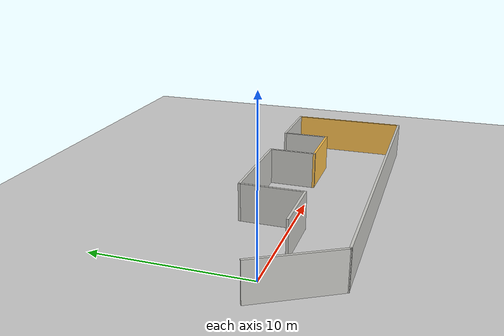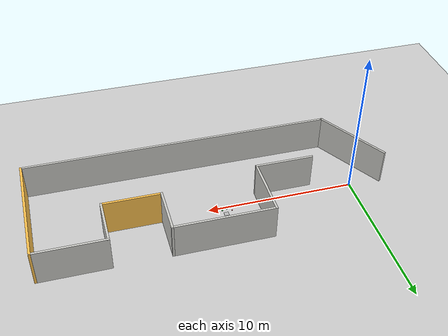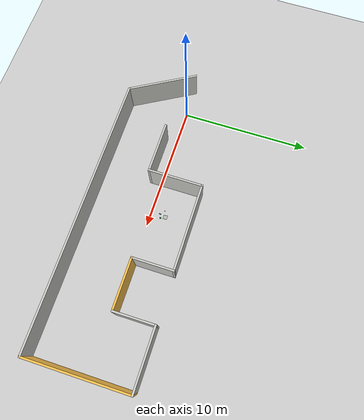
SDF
<sdf version="1.7">
 <world name="default">
  <light name="sun" type="directional">
   <pose>0 0 10 0 -0 0</pose>
   <diffuse>0.8 0.8 0.8 1</diffuse>
   <specular>0.2 0.2 0.2 1</specular>
   <attenuation>
    <range>1000</range>
    <constant>0.9</constant>
    <linear>0.01</linear>
    <quadratic>0.001</quadratic>
   </attenuation>
   <direction>-0.5 0.1 -0.9</direction>
   <spot><inner_angle>0</inner_angle><outer_angle>0</outer_angle><falloff>0</falloff></spot>
  </light>
  <model name="ground_plane">
   <static>1</static>
   <link name="link">
    <collision name="collision">
     <geometry><plane><normal>0 0 1</normal><size>100 100</size></plane></geometry>
     <surface><friction><ode><mu>100</mu><mu2>50</mu2></ode></friction></surface>
    </collision>
    <visual name="visual">
     <cast_shadows>0</cast_shadows>
     <geometry><plane><normal>0 0 1</normal><size>100 100</size></plane></geometry>
     <material>
      <script><uri>file://media/materials/scripts/gazebo.material</uri><name>Gazebo/Grey</name></script>
     </material>
    </visual>
   </link>
  </model>
  <gravity>0 0 -9.8</gravity>
  <magnetic_field>6e-06 2.3e-05 -4.2e-05</magnetic_field>
  <atmosphere type="adiabatic"/>
  <physics type="ode">
   <max_step_size>0.001</max_step_size>
   <real_time_factor>1</real_time_factor>
   <real_time_update_rate>1000</real_time_update_rate>
  </physics>
  <scene><ambient>0.4 0.4 0.4 1</ambient><background>0.7 0.7 0.7 1</background><shadows>1</shadows></scene>
  <spherical_coordinates>
   <surface_model>EARTH_WGS84</surface_model>
   <latitude_deg>0</latitude_deg>
   <longitude_deg>0</longitude_deg>
   <elevation>0</elevation>
   <heading_deg>0</heading_deg>
  </spherical_coordinates>
  <model name="well_0">
   <link name="Wall_37">
    <pose>7.30123 2.36581 0 0 -0 1.5708</pose>
    <visual name="Wall_37_Visual">
     <pose>0 0 1.25 0 -0 0</pose>
     <geometry><box><size>3.25 0.15 2.5</size></box></geometry>
     <material>
      <script><uri>file://media/materials/scripts/gazebo.material</uri><name>Gazebo/CeilingTiled</name></script>
      <ambient>1 0.764706 0.305882 1</ambient>
      <shader type="pixel"/>
     </material>
     <meta><layer>0</layer></meta>
    </visual>
    <collision name="Wall_37_Collision">
     <pose>0 0 1.25 0 -0 0</pose>
     <geometry><box><size>3.25 0.15 2.5</size></box></geometry>
     <surface>
      <friction>
       <ode><mu>1</mu><mu2>1</mu2><fdir1>0 0 0</fdir1><slip1>0</slip1><slip2>0</slip2></ode>
       <torsional>
        <coefficient>1</coefficient>
        <patch_radius>0</patch_radius>
        <surface_radius>0</surface_radius>
        <use_patch_radius>1</use_patch_radius>
        <ode><slip>0</slip></ode>
       </torsional>
      </friction>
      <bounce><restitution_coefficient>0</restitution_coefficient><threshold>1e+06</threshold></bounce>
      <contact>
       <collide_without_contact>0</collide_without_contact>
       <collide_without_contact_bitmask>1</collide_without_contact_bitmask>
       <collide_bitmask>1</collide_bitmask>
       <ode>
        <soft_cfm>0</soft_cfm>
        <soft_erp>0.2</soft_erp>
        <kp>1e+13</kp>
        <kd>1</kd>
        <max_vel>0.01</max_vel>
        <min_depth>0</min_depth>
       </ode>
       <bullet>
        <split_impulse>1</split_impulse>
        <split_impulse_penetration_threshold>-0.01</split_impulse_penetration_threshold>
        <soft_cfm>0</soft_cfm>
        <soft_erp>0.2</soft_erp>
        <kp>1e+13</kp>
        <kd>1</kd>
       </bullet>
      </contact>
     </surface>
    </collision>
   </link>
   <link name="Wall_38">
    <pose>9.60122 3.91581 0 0 -0 0</pose>
    <visual name="Wall_38_Visual">
     <pose>0 0 1.25 0 -0 0</pose>
     <geometry><box><size>4.75 0.15 2.5</size></box></geometry>
     <material>
      <script><uri>file://media/materials/scripts/gazebo.material</uri><name>Gazebo/CeilingTiled</name></script>
      <ambient>1 0.764706 0.305882 1</ambient>
      <shader type="pixel"/>
     </material>
     <meta><layer>0</layer></meta>
    </visual>
    <collision name="Wall_38_Collision">
     <pose>0 0 1.25 0 -0 0</pose>
     <geometry><box><size>4.75 0.15 2.5</size></box></geometry>
     <surface>
      <friction>
       <ode><mu>1</mu><mu2>1</mu2><fdir1>0 0 0</fdir1><slip1>0</slip1><slip2>0</slip2></ode>
       <torsional>
        <coefficient>1</coefficient>
        <patch_radius>0</patch_radius>
        <surface_radius>0</surface_radius>
        <use_patch_radius>1</use_patch_radius>
        <ode><slip>0</slip></ode>
       </torsional>
      </friction>
      <bounce><restitution_coefficient>0</restitution_coefficient><threshold>1e+06</threshold></bounce>
      <contact>
       <collide_without_contact>0</collide_without_contact>
       <collide_without_contact_bitmask>1</collide_without_contact_bitmask>
       <collide_bitmask>1</collide_bitmask>
       <ode>
        <soft_cfm>0</soft_cfm>
        <soft_erp>0.2</soft_erp>
        <kp>1e+13</kp>
        <kd>1</kd>
        <max_vel>0.01</max_vel>
        <min_depth>0</min_depth>
       </ode>
       <bullet>
        <split_impulse>1</split_impulse>
        <split_impulse_penetration_threshold>-0.01</split_impulse_penetration_threshold>
        <soft_cfm>0</soft_cfm>
        <soft_erp>0.2</soft_erp>
        <kp>1e+13</kp>
        <kd>1</kd>
       </bullet>
      </contact>
     </surface>
    </collision>
   </link>
   <link name="Wall_44">
    <pose>5.37623 0.815813 0 0 -0 3.14159</pose>
    <visual name="Wall_44_Visual">
     <pose>0 0 1.25 0 -0 0</pose>
     <geometry><box><size>4 0.15 2.5</size></box></geometry>
     <material>
      <script><uri>file://media/materials/scripts/gazebo.material</uri><name>Gazebo/Grey</name></script>
      <ambient>1 0.764706 0.305882 1</ambient>
      <shader type="pixel"/>
     </material>
     <meta><layer>0</layer></meta>
    </visual>
    <collision name="Wall_44_Collision">
     <pose>0 0 1.25 0 -0 0</pose>
     <geometry><box><size>4 0.15 2.5</size></box></geometry>
     <surface>
      <friction>
       <ode><mu>1</mu><mu2>1</mu2><fdir1>0 0 0</fdir1><slip1>0</slip1><slip2>0</slip2></ode>
       <torsional>
        <coefficient>1</coefficient>
        <patch_radius>0</patch_radius>
        <surface_radius>0</surface_radius>
        <use_patch_radius>1</use_patch_radius>
        <ode><slip>0</slip></ode>
       </torsional>
      </friction>
      <bounce><restitution_coefficient>0</restitution_coefficient><threshold>1e+06</threshold></bounce>
      <contact>
       <collide_without_contact>0</collide_without_contact>
       <collide_without_contact_bitmask>1</collide_without_contact_bitmask>
       <collide_bitmask>1</collide_bitmask>
       <ode>
        <soft_cfm>0</soft_cfm>
        <soft_erp>0.2</soft_erp>
        <kp>1e+13</kp>
        <kd>1</kd>
        <max_vel>0.01</max_vel>
        <min_depth>0</min_depth>
       </ode>
       <bullet>
        <split_impulse>1</split_impulse>
        <split_impulse_penetration_threshold>-0.01</split_impulse_penetration_threshold>
        <soft_cfm>0</soft_cfm>
        <soft_erp>0.2</soft_erp>
        <kp>1e+13</kp>
        <kd>1</kd>
       </bullet>
      </contact>
     </surface>
    </collision>
   </link>
   <link name="Wall_45">
    <pose>3.45123 2.36581 0 0 -0 1.5708</pose>
    <visual name="Wall_45_Visual">
     <pose>0 0 1.25 0 -0 0</pose>
     <geometry><box><size>3.25 0.15 2.5</size></box></geometry>
     <material>
      <script><uri>file://media/materials/scripts/gazebo.material</uri><name>Gazebo/CeilingTiled</name></script>
      <ambient>1 0.764706 0.305882 1</ambient>
      <shader type="pixel"/>
     </material>
     <meta><layer>0</layer></meta>
    </visual>
    <collision name="Wall_45_Collision">
     <pose>0 0 1.25 0 -0 0</pose>
     <geometry><box><size>3.25 0.15 2.5</size></box></geometry>
     <surface>
      <friction>
       <ode><mu>1</mu><mu2>1</mu2><fdir1>0 0 0</fdir1><slip1>0</slip1><slip2>0</slip2></ode>
       <torsional>
        <coefficient>1</coefficient>
        <patch_radius>0</patch_radius>
        <surface_radius>0</surface_radius>
        <use_patch_radius>1</use_patch_radius>
        <ode><slip>0</slip></ode>
       </torsional>
      </friction>
      <bounce><restitution_coefficient>0</restitution_coefficient><threshold>1e+06</threshold></bounce>
      <contact>
       <collide_without_contact>0</collide_without_contact>
       <collide_without_contact_bitmask>1</collide_without_contact_bitmask>
       <collide_bitmask>1</collide_bitmask>
       <ode>
        <soft_cfm>0</soft_cfm>
        <soft_erp>0.2</soft_erp>
        <kp>1e+13</kp>
        <kd>1</kd>
        <max_vel>0.01</max_vel>
        <min_depth>0</min_depth>
       </ode>
       <bullet>
        <split_impulse>1</split_impulse>
        <split_impulse_penetration_threshold>-0.01</split_impulse_penetration_threshold>
        <soft_cfm>0</soft_cfm>
        <soft_erp>0.2</soft_erp>
        <kp>1e+13</kp>
        <kd>1</kd>
       </bullet>
      </contact>
     </surface>
    </collision>
   </link>
   <link name="Wall_46">
    <pose>0.151226 3.91581 0 0 -0 3.14159</pose>
    <visual name="Wall_46_Visual">
     <pose>0 0 1.25 0 -0 0</pose>
     <geometry><box><size>6.75 0.15 2.5</size></box></geometry>
     <material>
      <script><uri>file://media/materials/scripts/gazebo.material</uri><name>Gazebo/CeilingTiled</name></script>
      <ambient>1 0.764706 0.305882 1</ambient>
      <shader type="pixel"/>
     </material>
     <meta><layer>0</layer></meta>
    </visual>
    <collision name="Wall_46_Collision">
     <pose>0 0 1.25 0 -0 0</pose>
     <geometry><box><size>6.75 0.15 2.5</size></box></geometry>
     <surface>
      <friction>
       <ode><mu>1</mu><mu2>1</mu2><fdir1>0 0 0</fdir1><slip1>0</slip1><slip2>0</slip2></ode>
       <torsional>
        <coefficient>1</coefficient>
        <patch_radius>0</patch_radius>
        <surface_radius>0</surface_radius>
        <use_patch_radius>1</use_patch_radius>
        <ode><slip>0</slip></ode>
       </torsional>
      </friction>
      <bounce><restitution_coefficient>0</restitution_coefficient><threshold>1e+06</threshold></bounce>
      <contact>
       <collide_without_contact>0</collide_without_contact>
       <collide_without_contact_bitmask>1</collide_without_contact_bitmask>
       <collide_bitmask>1</collide_bitmask>
       <ode>
        <soft_cfm>0</soft_cfm>
        <soft_erp>0.2</soft_erp>
        <kp>1e+13</kp>
        <kd>1</kd>
        <max_vel>0.01</max_vel>
        <min_depth>0</min_depth>
       </ode>
       <bullet>
        <split_impulse>1</split_impulse>
        <split_impulse_penetration_threshold>-0.01</split_impulse_penetration_threshold>
        <soft_cfm>0</soft_cfm>
        <soft_erp>0.2</soft_erp>
        <kp>1e+13</kp>
        <kd>1</kd>
       </bullet>
      </contact>
     </surface>
    </collision>
   </link>
   <link name="Wall_50">
    <pose>-3.14877 1.86581 0 0 0 -1.5708</pose>
    <visual name="Wall_50_Visual">
     <pose>0 0 1.25 0 -0 0</pose>
     <geometry><box><size>4.25 0.15 2.5</size></box></geometry>
     <material>
      <script><uri>file://media/materials/scripts/gazebo.material</uri><name>Gazebo/CeilingTiled</name></script>
      <ambient>1 0.764706 0.305882 1</ambient>
      <shader type="pixel"/>
     </material>
     <meta><layer>0</layer></meta>
    </visual>
    <collision name="Wall_50_Collision">
     <pose>0 0 1.25 0 -0 0</pose>
     <geometry><box><size>4.25 0.15 2.5</size></box></geometry>
     <surface>
      <friction>
       <ode><mu>1</mu><mu2>1</mu2><fdir1>0 0 0</fdir1><slip1>0</slip1><slip2>0</slip2></ode>
       <torsional>
        <coefficient>1</coefficient>
        <patch_radius>0</patch_radius>
        <surface_radius>0</surface_radius>
        <use_patch_radius>1</use_patch_radius>
        <ode><slip>0</slip></ode>
       </torsional>
      </friction>
      <bounce><restitution_coefficient>0</restitution_coefficient><threshold>1e+06</threshold></bounce>
      <contact>
       <collide_without_contact>0</collide_without_contact>
       <collide_without_contact_bitmask>1</collide_without_contact_bitmask>
       <collide_bitmask>1</collide_bitmask>
       <ode>
        <soft_cfm>0</soft_cfm>
        <soft_erp>0.2</soft_erp>
        <kp>1e+13</kp>
        <kd>1</kd>
        <max_vel>0.01</max_vel>
        <min_depth>0</min_depth>
       </ode>
       <bullet>
        <split_impulse>1</split_impulse>
        <split_impulse_penetration_threshold>-0.01</split_impulse_penetration_threshold>
        <soft_cfm>0</soft_cfm>
        <soft_erp>0.2</soft_erp>
        <kp>1e+13</kp>
        <kd>1</kd>
       </bullet>
      </contact>
     </surface>
    </collision>
   </link>
   <link name="Wall_54">
    <pose>11.9012 -0.009187 0 0 0 -1.5708</pose>
    <visual name="Wall_54_Visual">
     <pose>0 0 1.25 0 -0 0</pose>
     <geometry><box><size>8 0.15 2.5</size></box></geometry>
     <material>
      <script><uri>file://media/materials/scripts/gazebo.material</uri><name>Gazebo/Grey</name></script>
      <ambient>1 0.764706 0.305882 1</ambient>
      <shader type="pixel"/>
     </material>
     <meta><layer>0</layer></meta>
    </visual>
    <collision name="Wall_54_Collision">
     <pose>0 0 1.25 0 -0 0</pose>
     <geometry><box><size>8 0.15 2.5</size></box></geometry>
     <surface>
      <friction>
       <ode><mu>1</mu><mu2>1</mu2><fdir1>0 0 0</fdir1><slip1>0</slip1><slip2>0</slip2></ode>
       <torsional>
        <coefficient>1</coefficient>
        <patch_radius>0</patch_radius>
        <surface_radius>0</surface_radius>
        <use_patch_radius>1</use_patch_radius>
        <ode><slip>0</slip></ode>
       </torsional>
      </friction>
      <bounce><restitution_coefficient>0</restitution_coefficient><threshold>1e+06</threshold></bounce>
      <contact>
       <collide_without_contact>0</collide_without_contact>
       <collide_without_contact_bitmask>1</collide_without_contact_bitmask>
       <collide_bitmask>1</collide_bitmask>
       <ode>
        <soft_cfm>0</soft_cfm>
        <soft_erp>0.2</soft_erp>
        <kp>1e+13</kp>
        <kd>1</kd>
        <max_vel>0.01</max_vel>
        <min_depth>0</min_depth>
       </ode>
       <bullet>
        <split_impulse>1</split_impulse>
        <split_impulse_penetration_threshold>-0.01</split_impulse_penetration_threshold>
        <soft_cfm>0</soft_cfm>
        <soft_erp>0.2</soft_erp>
        <kp>1e+13</kp>
        <kd>1</kd>
       </bullet>
      </contact>
     </surface>
    </collision>
   </link>
   <link name="Wall_58">
    <pose>-5.07377 -0.184186 0 0 -0 3.14159</pose>
    <visual name="Wall_58_Visual">
     <pose>0 0 1.25 0 -0 0</pose>
     <geometry><box><size>4 0.15 2.5</size></box></geometry>
     <material>
      <script><uri>file://media/materials/scripts/gazebo.material</uri><name>Gazebo/CeilingTiled</name></script>
      <ambient>1 0.764706 0.305882 1</ambient>
      <shader type="pixel"/>
     </material>
     <meta><layer>0</layer></meta>
    </visual>
    <collision name="Wall_58_Collision">
     <pose>0 0 1.25 0 -0 0</pose>
     <geometry><box><size>4 0.15 2.5</size></box></geometry>
     <surface>
      <friction>
       <ode><mu>1</mu><mu2>1</mu2><fdir1>0 0 0</fdir1><slip1>0</slip1><slip2>0</slip2></ode>
       <torsional>
        <coefficient>1</coefficient>
        <patch_radius>0</patch_radius>
        <surface_radius>0</surface_radius>
        <use_patch_radius>1</use_patch_radius>
        <ode><slip>0</slip></ode>
       </torsional>
      </friction>
      <bounce><restitution_coefficient>0</restitution_coefficient><threshold>1e+06</threshold></bounce>
      <contact>
       <collide_without_contact>0</collide_without_contact>
       <collide_without_contact_bitmask>1</collide_without_contact_bitmask>
       <collide_bitmask>1</collide_bitmask>
       <ode>
        <soft_cfm>0</soft_cfm>
        <soft_erp>0.2</soft_erp>
        <kp>1e+13</kp>
        <kd>1</kd>
        <max_vel>0.01</max_vel>
        <min_depth>0</min_depth>
       </ode>
       <bullet>
        <split_impulse>1</split_impulse>
        <split_impulse_penetration_threshold>-0.01</split_impulse_penetration_threshold>
        <soft_cfm>0</soft_cfm>
        <soft_erp>0.2</soft_erp>
        <kp>1e+13</kp>
        <kd>1</kd>
       </bullet>
      </contact>
     </surface>
    </collision>
   </link>
   <link name="Wall_60">
    <pose>1.35123 -3.93419 0 0 -0 3.14159</pose>
    <inertial>
     <mass>1</mass>
     <inertia><ixx>1</ixx><ixy>0</ixy><ixz>0</ixz><iyy>1</iyy><iyz>0</iyz><izz>1</izz></inertia>
    </inertial>
    <visual name="Wall_60_Visual">
     <pose>0 0 1.25 0 -0 0</pose>
     <geometry><box><size>21.25 0.15 2.5</size></box></geometry>
     <material>
      <script><uri>file://media/materials/scripts/gazebo.material</uri><name>Gazebo/CeilingTiled</name></script>
      <ambient>0.9 0.765 0.306 1</ambient>
      <shader type="pixel"><normal_map>__default__</normal_map></shader>
      <diffuse>1 1 1 1</diffuse>
      <specular>0 0 0 1</specular>
      <emissive>0 0 0 1</emissive>
     </material>
     <meta><layer>0</layer></meta>
    </visual>
    <collision name="Wall_60_Collision">
     <pose>0 0 1.25 0 -0 0</pose>
     <geometry><box><size>21.25 0.15 2.5</size></box></geometry>
     <surface>
      <friction>
       <ode><mu>1</mu><mu2>1</mu2><fdir1>0 0 0</fdir1><slip1>0</slip1><slip2>0</slip2></ode>
       <torsional>
        <coefficient>1</coefficient>
        <patch_radius>0</patch_radius>
        <surface_radius>0</surface_radius>
        <use_patch_radius>1</use_patch_radius>
        <ode><slip>0</slip></ode>
       </torsional>
      </friction>
      <bounce><restitution_coefficient>0</restitution_coefficient><threshold>1e+06</threshold></bounce>
      <contact>
       <collide_without_contact>0</collide_without_contact>
       <collide_without_contact_bitmask>1</collide_without_contact_bitmask>
       <collide_bitmask>1</collide_bitmask>
       <ode>
        <soft_cfm>0</soft_cfm>
        <soft_erp>0.2</soft_erp>
        <kp>1e+13</kp>
        <kd>1</kd>
        <max_vel>0.01</max_vel>
        <min_depth>0</min_depth>
       </ode>
       <bullet>
        <split_impulse>1</split_impulse>
        <split_impulse_penetration_threshold>-0.01</split_impulse_penetration_threshold>
        <soft_cfm>0</soft_cfm>
        <soft_erp>0.2</soft_erp>
        <kp>1e+13</kp>
        <kd>1</kd>
       </bullet>
      </contact>
     </surface>
    </collision>
   </link>
   <link name="Wall_61">
    <pose>-10.5363 -1.61757 0 0 -0 2.0944</pose>
    <visual name="Wall_61_Visual">
     <pose>0 0 1.25 0 -0 0</pose>
     <geometry><box><size>5.5 0.15 2.5</size></box></geometry>
     <material>
      <script><uri>file://media/materials/scripts/gazebo.material</uri><name>Gazebo/CeilingTiled</name></script>
      <ambient>1 0.764706 0.305882 1</ambient>
      <shader type="pixel"/>
     </material>
     <meta><layer>0</layer></meta>
    </visual>
    <collision name="Wall_61_Collision">
     <pose>0 0 1.25 0 -0 0</pose>
     <geometry><box><size>5.5 0.15 2.5</size></box></geometry>
     <surface>
      <friction>
       <ode><mu>1</mu><mu2>1</mu2><fdir1>0 0 0</fdir1><slip1>0</slip1><slip2>0</slip2></ode>
       <torsional>
        <coefficient>1</coefficient>
        <patch_radius>0</patch_radius>
        <surface_radius>0</surface_radius>
        <use_patch_radius>1</use_patch_radius>
        <ode><slip>0</slip></ode>
       </torsional>
      </friction>
      <bounce><restitution_coefficient>0</restitution_coefficient><threshold>1e+06</threshold></bounce>
      <contact>
       <collide_without_contact>0</collide_without_contact>
       <collide_without_contact_bitmask>1</collide_without_contact_bitmask>
       <collide_bitmask>1</collide_bitmask>
       <ode>
        <soft_cfm>0</soft_cfm>
        <soft_erp>0.2</soft_erp>
        <kp>1e+13</kp>
        <kd>1</kd>
        <max_vel>0.01</max_vel>
        <min_depth>0</min_depth>
       </ode>
       <bullet>
        <split_impulse>1</split_impulse>
        <split_impulse_penetration_threshold>-0.01</split_impulse_penetration_threshold>
        <soft_cfm>0</soft_cfm>
        <soft_erp>0.2</soft_erp>
        <kp>1e+13</kp>
        <kd>1</kd>
       </bullet>
      </contact>
     </surface>
    </collision>
   </link>
   <static>1</static>
   <pose>9.66697 -0.64338 0 0 -0 0</pose>
  </model>
  <model name="cylinder">
   <link name="cylinder">
    <inertial>
     <mass>7.51002</mass>
     <inertia>
      <ixx>0.0178832</ixx>
      <ixy>0</ixy>
      <ixz>0</ixz>
      <iyy>0.0178832</iyy>
      <iyz>0</iyz>
      <izz>0.00760389</izz>
     </inertia>
    </inertial>
    <visual name="cylinder_visual">
     <geometry><cylinder><length>0.15</length><radius>0.045</radius></cylinder></geometry>
     <material>
      <script><name>Gazebo/Green</name><uri>file://media/materials/scripts/gazebo.material</uri></script>
      <shader type="pixel"><normal_map>__default__</normal_map></shader>
     </material>
    </visual>
    <collision name="cylinder_collision">
     <geometry><cylinder><radius>0.045</radius><length>0.15</length></cylinder></geometry>
     <surface>
      <friction>
       <ode><mu>0.5</mu><mu2>0.5</mu2><fdir1>0 0 0</fdir1><slip1>0</slip1><slip2>0</slip2></ode>
       <torsional>
        <coefficient>1</coefficient>
        <patch_radius>0</patch_radius>
        <surface_radius>0</surface_radius>
        <use_patch_radius>1</use_patch_radius>
        <ode><slip>0</slip></ode>
       </torsional>
      </friction>
      <bounce><restitution_coefficient>0</restitution_coefficient><threshold>1e+06</threshold></bounce>
      <contact>
       <collide_without_contact>0</collide_without_contact>
       <collide_without_contact_bitmask>1</collide_without_contact_bitmask>
       <collide_bitmask>1</collide_bitmask>
       <ode>
        <soft_cfm>0</soft_cfm>
        <soft_erp>0.2</soft_erp>
        <kp>1e+13</kp>
        <kd>1</kd>
        <max_vel>0.01</max_vel>
        <min_depth>0</min_depth>
       </ode>
       <bullet>
        <split_impulse>1</split_impulse>
        <split_impulse_penetration_threshold>-0.01</split_impulse_penetration_threshold>
        <soft_cfm>0</soft_cfm>
        <soft_erp>0.2</soft_erp>
        <kp>1e+13</kp>
        <kd>1</kd>
       </bullet>
      </contact>
     </surface>
    </collision>
   </link>
   <static>0</static>
   <pose>9.31926 0.893549 0.753495 3.14159 6e-06 2.11823</pose>
  </model>
  <model name="long_box">
   <link name="long_block">
    <inertial>
     <mass>2.95125</mass>
     <inertia>
      <ixx>0.00614844</ixx>
      <ixy>0</ixy>
      <ixz>0</ixz>
      <iyy>0.00122969</iyy>
      <iyz>0</iyz>
      <izz>0.00614844</izz>
     </inertia>
    </inertial>
    <visual name="long_block_visual">
     <geometry><box><size>0.05 0.15 0.05</size></box></geometry>
     <material>
      <script><name>Gazebo/Green</name><uri>file://media/materials/scripts/table_8_9_10.material</uri></script>
      <shader type="pixel"><normal_map>__default__</normal_map></shader>
     </material>
    </visual>
    <collision name="long_block_collision">
     <geometry><box><size>0.05 0.15 0.05</size></box></geometry>
     <surface>
      <friction>
       <ode><mu>0.5</mu><mu2>0.5</mu2><fdir1>0 0 0</fdir1><slip1>0</slip1><slip2>0</slip2></ode>
       <torsional>
        <coefficient>1</coefficient>
        <patch_radius>0</patch_radius>
        <surface_radius>0</surface_radius>
        <use_patch_radius>1</use_patch_radius>
        <ode><slip>0</slip></ode>
       </torsional>
      </friction>
      <bounce><restitution_coefficient>0</restitution_coefficient><threshold>1e+06</threshold></bounce>
      <contact>
       <collide_without_contact>0</collide_without_contact>
       <collide_without_contact_bitmask>1</collide_without_contact_bitmask>
       <collide_bitmask>1</collide_bitmask>
       <ode>
        <soft_cfm>0</soft_cfm>
        <soft_erp>0.2</soft_erp>
        <kp>1e+13</kp>
        <kd>1</kd>
        <max_vel>0.01</max_vel>
        <min_depth>0</min_depth>
       </ode>
       <bullet>
        <split_impulse>1</split_impulse>
        <split_impulse_penetration_threshold>-0.01</split_impulse_penetration_threshold>
        <soft_cfm>0</soft_cfm>
        <soft_erp>0.2</soft_erp>
        <kp>1e+13</kp>
        <kd>1</kd>
       </bullet>
      </contact>
     </surface>
    </collision>
   </link>
   <static>0</static>
   <pose>9.00885 0.767256 0.703495 -3.14159 1.57078 -3.14159</pose>
  </model>
  <model name="box">
   <link name="block">
    <inertial>
     <mass>1.05375</mass>
     <inertia>
      <ixx>0.00043906</ixx>
      <ixy>0</ixy>
      <ixz>0</ixz>
      <iyy>0.00043906</iyy>
      <iyz>0</iyz>
      <izz>0.00043906</izz>
     </inertia>
    </inertial>
    <visual name="block_visual">
     <geometry><box><size>0.05 0.05 0.05</size></box></geometry>
     <material>
      <script><name>Gazebo/Red</name><uri>file://media/materials/scripts/gazebo.material</uri></script>
      <shader type="pixel"><normal_map>__default__</normal_map></shader>
     </material>
    </visual>
    <collision name="block_collision">
     <geometry><box><size>0.05 0.05 0.05</size></box></geometry>
     <surface>
      <friction>
       <ode><mu>0.5</mu><mu2>0.5</mu2><fdir1>0 0 0</fdir1><slip1>0</slip1><slip2>0</slip2></ode>
       <torsional>
        <coefficient>1</coefficient>
        <patch_radius>0</patch_radius>
        <surface_radius>0</surface_radius>
        <use_patch_radius>1</use_patch_radius>
        <ode><slip>0</slip></ode>
       </torsional>
      </friction>
      <bounce><restitution_coefficient>0</restitution_coefficient><threshold>1e+06</threshold></bounce>
      <contact>
       <collide_without_contact>0</collide_without_contact>
       <collide_without_contact_bitmask>1</collide_without_contact_bitmask>
       <collide_bitmask>1</collide_bitmask>
       <ode>
        <soft_cfm>0</soft_cfm>
        <soft_erp>0.2</soft_erp>
        <kp>1e+13</kp>
        <kd>1</kd>
        <max_vel>0.01</max_vel>
        <min_depth>0</min_depth>
       </ode>
       <bullet>
        <split_impulse>1</split_impulse>
        <split_impulse_penetration_threshold>-0.01</split_impulse_penetration_threshold>
        <soft_cfm>0</soft_cfm>
        <soft_erp>0.2</soft_erp>
        <kp>1e+13</kp>
        <kd>1</kd>
       </bullet>
      </contact>
     </surface>
    </collision>
   </link>
   <static>0</static>
   <pose>8.70325 1.03557 0.703488 -1.57075 -6.6e-05 -1.11518</pose>
  </model>
  <model name="Aruco tag2">
   <static>1</static>
   <link name="linkAU2">
    <visual name="body_visual">
     <geometry><box><size>0.3 0.3 0.01</size></box></geometry>
     <material>
      <script><uri>file://media/materials/scripts/tag.material</uri><name>aruco_tag_2</name></script>
     </material>
    </visual>
   </link>
   <pose>9.1351 1.22549 0.683195 3.14159 -0 3.14159</pose>
  </model>
 </world>
</sdf>
